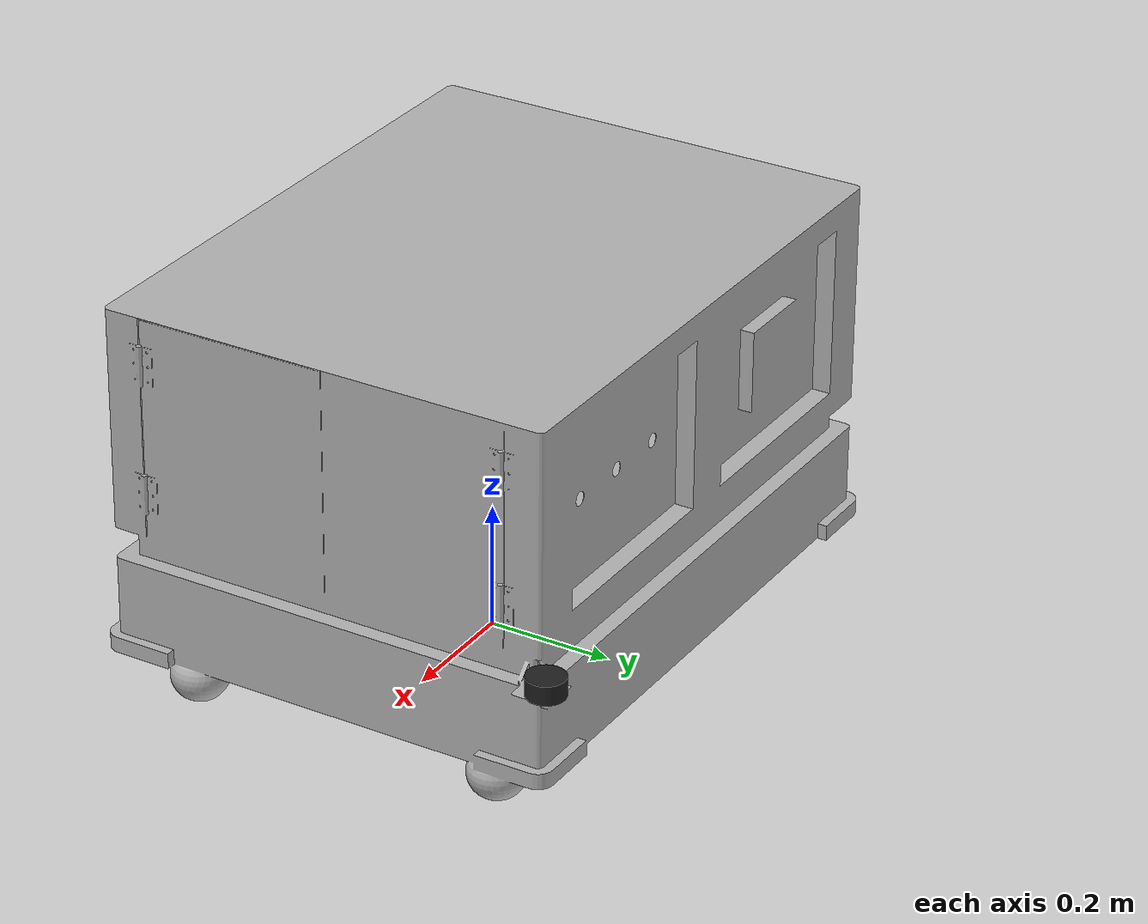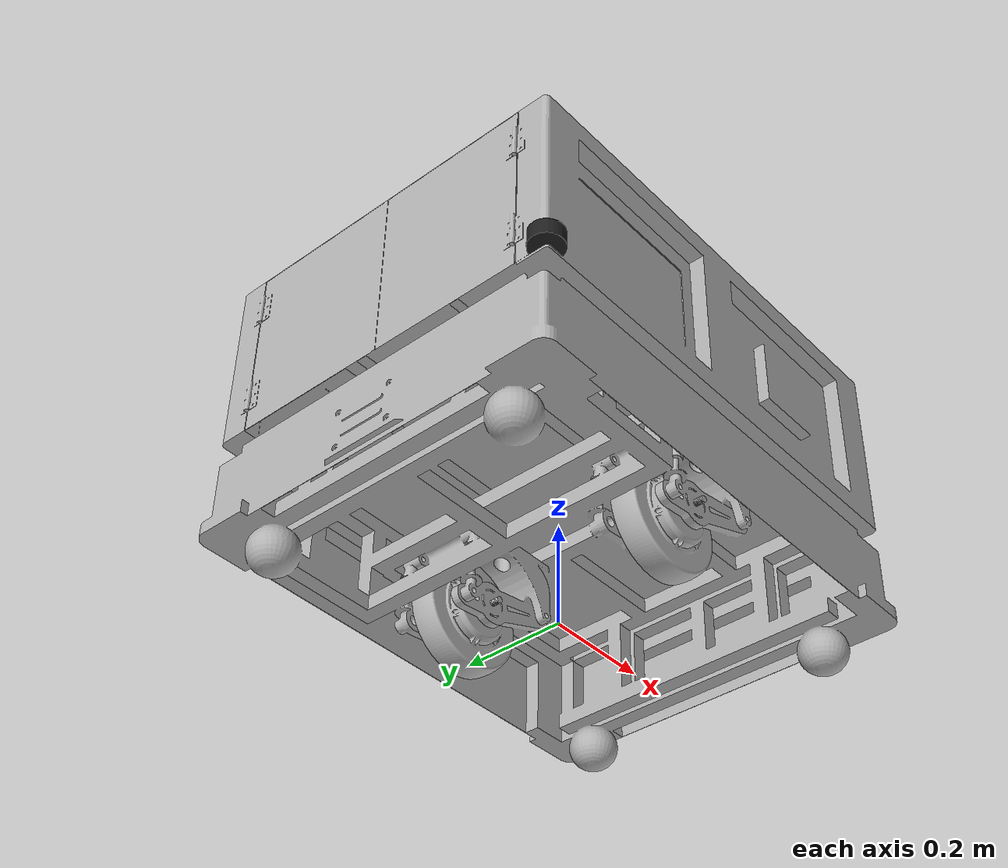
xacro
<?xml version="1.0" ?>
<robot name="my_robot" xmlns:xacro="http://www.ros.org/wiki/xacro">

<xacro:include filename="$(find my_robot_description)/urdf/materials.xacro" />
<xacro:include filename="$(find my_robot_description)/urdf/my_robot.trans" />
<xacro:include filename="$(find my_robot_description)/urdf/my_robot.gazebo" />
<xacro:include filename="$(find my_robot_description)/urdf/inertial_macros.xacro" />
<xacro:include filename="$(find my_robot_description)/urdf/ros2_control.xacro" />
<xacro:include filename="$(find my_robot_description)/urdf/lidar.xacro" />

<!-- BASE FOOTPRINT LINK -->

<link name="base_footprint">
  <origin xyz="0 0 0" rpy="0 0 0"/>
</link>

<!-- BASE LINK -->

<link name="base_link">
  <xacro:inertial_box mass="40" x="0.92" y="0.72" z="0.551">
      <origin xyz="0 0 0.2755" rpy="0 0 0"/>
  </xacro:inertial_box>
  <visual>
    <origin xyz="0 0 0" rpy="0 0 3.14159"/>
    <geometry>
      <mesh filename="file://$(find my_robot_description)/meshes/base_link.stl" scale="0.001 0.001 0.001"/>
    </geometry>
    <material name="silver"/>
  </visual>
  <collision>
    <origin xyz="0 0 0" rpy="0 0 3.14159"/>
    <geometry>
      <mesh filename="file://$(find my_robot_description)/meshes/base_link.stl" scale="0.001 0.001 0.001"/>
    </geometry>
  </collision>
</link>

<joint name="base_link_to_base_footprint_link" type="fixed">
  <parent link="base_footprint"/>
  <child link="base_link"/>
  <origin xyz="0 0 0" rpy="0 0 3.14159"/>
</joint>

<!-- RIGHT WHEEL LINK -->

<link name="right_wheel_1">
  <xacro:inertial_cylinder mass="4.5" length="0.05" radius="0.10795">
      <origin xyz="0 0 0" rpy="0 0 0"/>
  </xacro:inertial_cylinder>
  <visual>
    <origin xyz="0.0 0.2175 -0.108014" rpy="0 0 3.14159"/>
    <geometry>
      <mesh filename="file://$(find my_robot_description)/meshes/right_wheel_1.stl" scale="0.001 0.001 0.001"/>
    </geometry>
    <material name="silver"/>
  </visual>
  <collision>
    <origin xyz="0 0 0" rpy="0 0 3.14159"/>
    <geometry>
      <sphere radius="0.10890"/>
    </geometry>
  </collision>
</link>

<joint name="right_wheel_to_base_link" type="continuous">
  <origin xyz="0.0 -0.2175 0.108014" rpy="0 0 0"/>
  <parent link="base_link"/>
  <child link="right_wheel_1"/>
  <axis xyz="0.0 1.0 0.0"/>
</joint>

<!-- LEFT WHEEL LINK -->

<link name="left_wheel_1">
  <xacro:inertial_cylinder mass="4.5" length="0.05" radius="0.10795">
    <origin xyz="0 0 0" rpy="0 0 0"/>
  </xacro:inertial_cylinder>
  <visual>
    <origin xyz="0.0 -0.2175 -0.108014" rpy="0 0 3.14159"/>
    <geometry>
      <mesh filename="file://$(find my_robot_description)/meshes/left_wheel_1.stl" scale="0.001 0.001 0.001"/>
    </geometry>
    <material name="silver"/>
  </visual>
  <collision>
    <origin xyz="0.0 0 0" rpy="0 0 3.14159"/>
    <geometry>
      <sphere radius="0.10890"/>
    </geometry>
  </collision>
</link>

<joint name="left_wheel_to_base_link" type="continuous">
  <origin xyz="0.0 0.2175 0.108014" rpy="0 0 0"/>
  <parent link="base_link"/>
  <child link="left_wheel_1"/>
  <axis xyz="0.0 1.0 0.0"/>
</joint>

</robot>

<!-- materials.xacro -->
<robot name="my_robot" xmlns:xacro="http://www.ros.org/wiki/xacro" >

<material name="silver">
  <color rgba="0.700 0.700 0.700 1.000"/>
</material>

</robot>

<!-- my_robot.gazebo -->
<robot name="my_robot" xmlns:xacro="http://www.ros.org/wiki/xacro" >

<xacro:property name="body_color" value="Gazebo/Silver" />

<gazebo>
  <plugin name="control" filename="libgazebo_ros_control.so"/>
</gazebo>
<gazebo reference="base_link">
  <material>${body_color}</material>
  <mu1>0.2</mu1>
  <mu2>0.2</mu2>
  <self_collide>true</self_collide>
  <gravity>true</gravity>
</gazebo>

<gazebo reference="right_wheel_1">
  <material>${body_color}</material>
  <mu1>15</mu1>
  <mu2>15</mu2>
  <self_collide>true</self_collide>
</gazebo>

<gazebo reference="left_wheel_1">
  <material>${body_color}</material>
  <mu1>15</mu1>
  <mu2>15</mu2>
  <self_collide>true</self_collide>
</gazebo>

</robot>

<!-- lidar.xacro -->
<robot xmlns:xacro="http://www.ros.org/wiki/xacro" >

<!-- LIDAR 1 (back) -->
    <joint name="laser_1_joint" type="fixed">
        <parent link="base_link"/>
        <child link="laser_1_frame"/>
        <origin xyz="-0.48 -0.38 0.26" rpy="0 0 0"/>
    </joint>

    <link name="laser_1_frame">
        <visual>
            <geometry>
                <cylinder radius="0.03" length="0.03"/>
            </geometry>
            <material name="black"/>
        </visual>
        <collision>
            <geometry>
                <cylinder radius="0.05" length="0.04"/>
            </geometry>
        </collision>
        <xacro:inertial_cylinder mass="0.1" length="0.04" radius="0.05">
            <origin xyz="0 0 0" rpy="0 0 0"/>
        </xacro:inertial_cylinder>
    </link>

    <gazebo reference="laser_1_frame">
        <material>Gazebo/Black</material>

        <sensor name="laser_1" type="ray">
            <pose> 0 0 0 0 0 0 </pose>
            <visualize>true</visualize>
            <update_rate>20</update_rate>
            <ray>
                <scan>
                    <horizontal>
                        <samples>270</samples>
                        <min_angle>-1.57</min_angle>
                        <max_angle>3.14159</max_angle>
                    </horizontal>
                </scan>
                <range>
                    <min>0.1</min>
                    <max>20</max>
                </range>
            </ray>
            <plugin name="laser1_controller" filename="libgazebo_ros_ray_sensor.so">
                <ros>
                    <remapping>~/out:=scan_1</remapping>
                </ros>
                <output_type>sensor_msgs/LaserScan</output_type>
                <frame_name>laser_1_frame</frame_name>
            </plugin>
        </sensor>
    </gazebo>

<!-- LIDAR 2 (front) -->
    <joint name="laser_2_joint" type="fixed">
        <parent link="base_link"/>
        <child link="laser_2_frame"/>
        <origin xyz="0.48 0.38 0.26" rpy="0 0 3.14159"/>
    </joint>

    <link name="laser_2_frame">
        <visual>
            <geometry>
                <cylinder radius="0.03" length="0.03"/>
            </geometry>
            <material name="black"/>
        </visual>
        <collision>
            <geometry>
                <cylinder radius="0.05" length="0.04"/>
            </geometry>
        </collision>
        <xacro:inertial_cylinder mass="0.1" length="0.04" radius="0.05">
            <origin xyz="0 0 0" rpy="0 0 0"/>
        </xacro:inertial_cylinder>
    </link>

    <gazebo reference="laser_2_frame">
        <material>Gazebo/Black</material>

        <sensor name="laser_2" type="ray">
            <pose> 0 0 0 0 0 0 </pose>
            <visualize>true</visualize>
            <update_rate>20</update_rate>
            <ray>
                <scan>
                    <horizontal>
                        <samples>270</samples>
                        <min_angle>-1.57</min_angle>
                        <max_angle>3.14159</max_angle>
                    </horizontal>
                </scan>
                <range>
                    <min>0.1</min>
                    <max>20</max>
                </range>
            </ray>
            <plugin name="laser2_controller" filename="libgazebo_ros_ray_sensor.so">
                <ros>
                    <remapping>~/out:=scan_2</remapping>
                </ros>
                <output_type>sensor_msgs/LaserScan</output_type>
                <frame_name>laser_2_frame</frame_name>
            </plugin>
        </sensor>
    </gazebo>

</robot>
